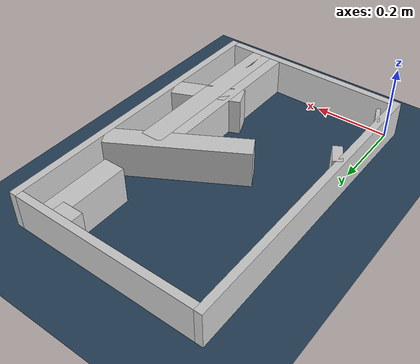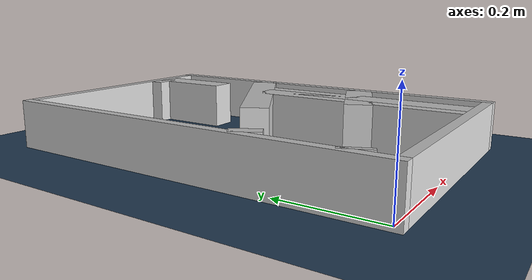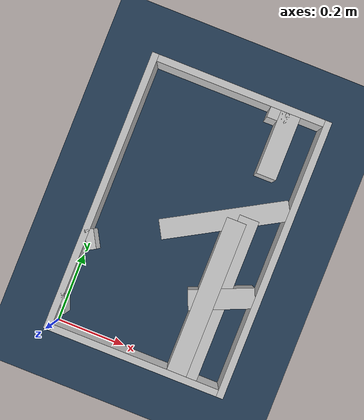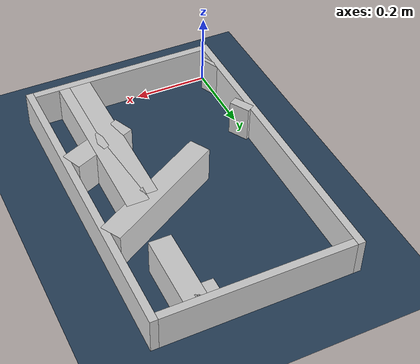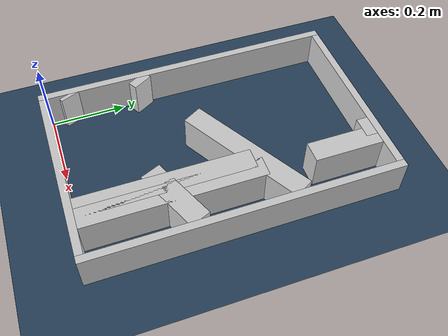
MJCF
<?xml version="1.0" ?>
<mujoco model="generated_real_template">
  <compiler angle="degree"/>
  <option timestep="0.002" integrator="implicitfast" iterations="100" cone="elliptic"/>
  <default>
    <geom density="1"/>
  </default>
  <asset>
    <texture builtin="gradient" height="3072" rgb1="0.3 0.5 0.7" rgb2="0 0 0" type="skybox" width="512"/>
    <texture builtin="checker" height="300" mark="edge" markrgb="0.8 0.8 0.8" name="groundplane" rgb1="0.2 0.3 0.4" rgb2="0.1 0.2 0.3" type="2d" width="300"/>
    <material name="groundplane" reflectance="0.2" texrepeat="5 5" texture="groundplane" texuniform="true"/>
  </asset>
  <worldbody>
    <light dir="0 0 -1" directional="true" pos="0 0 1.5"/>
    <geom name="floor" type="plane" condim="4" friction="0.5 0.005 0.001" material="groundplane" size="0 0 0.05"/>
    <body name="walls">
      <geom name="wall_boundary_left" type="box" condim="4" friction="1.0 0.005 0.0001" rgba="0.8 0.8 0.8 1" pos="-0.010000 0.387500 0.050000" euler="0 0 0.000000" size="0.010000 0.407500 0.050000"/>
      <geom name="wall_boundary_right" type="box" condim="4" friction="1.0 0.005 0.0001" rgba="0.8 0.8 0.8 1" pos="0.500000 0.387500 0.050000" euler="0 0 0.000000" size="0.010000 0.407500 0.050000"/>
      <geom name="wall_boundary_bottom" type="box" condim="4" friction="1.0 0.005 0.0001" rgba="0.8 0.8 0.8 1" pos="0.245000 -0.010000 0.050000" euler="0 0 0.000000" size="0.245000 0.010000 0.050000"/>
      <geom name="wall_boundary_top" type="box" condim="4" friction="1.0 0.005 0.0001" rgba="0.8 0.8 0.8 1" pos="0.245000 0.785000 0.050000" euler="0 0 0.000000" size="0.245000 0.010000 0.050000"/>
      <geom name="wall_inner_1_1" type="box" condim="4" friction="1.0 0.005 0.0001" rgba="0.8 0.8 0.8 1" pos="0.365595 0.224557 0.050000" euler="0 0 90.000000" size="0.224557 0.028500 0.050000"/>
      <geom name="wall_inner_1_2" type="box" condim="4" friction="1.0 0.005 0.0001" rgba="0.8 0.8 0.8 1" pos="0.365595 0.759779 0.050000" euler="0 0 90.000000" size="0.015221 0.028500 0.050000"/>
      <geom name="wall_inner_2_1" type="box" condim="4" friction="1.0 0.005 0.0001" rgba="0.8 0.8 0.8 1" pos="0.405351 0.233884 0.050000" euler="0 0 -156.766439" size="0.092120 0.028500 0.050000"/>
      <geom name="wall_inner_2_2" type="box" condim="4" friction="1.0 0.005 0.0001" rgba="0.8 0.8 0.8 1" pos="0.004963 0.062000 0.050000" euler="0 0 -156.766439" size="0.005401 0.028500 0.050000"/>
      <geom name="wall_inner_3_1" type="box" condim="4" friction="1.0 0.005 0.0001" rgba="0.8 0.8 0.8 1" pos="0.395647 0.233996 0.050000" euler="0 0 90.000000" size="0.233996 0.028500 0.050000"/>
      <geom name="wall_inner_3_2" type="box" condim="4" friction="1.0 0.005 0.0001" rgba="0.8 0.8 0.8 1" pos="0.395647 0.682846 0.050000" euler="0 0 90.000000" size="0.092154 0.028500 0.050000"/>
      <geom name="wall_inner_4_1" type="box" condim="4" friction="1.0 0.005 0.0001" rgba="0.8 0.8 0.8 1" pos="0.334194 0.439058 0.050000" euler="0 0 -150.186855" size="0.179572 0.028500 0.050000"/>
      <geom name="wall_inner_4_2" type="box" condim="4" friction="1.0 0.005 0.0001" rgba="0.8 0.8 0.8 1" pos="0.010955 0.253839 0.050000" euler="0 0 -150.186855" size="0.012626 0.028500 0.050000"/>
    </body>
  </worldbody>
</mujoco>
